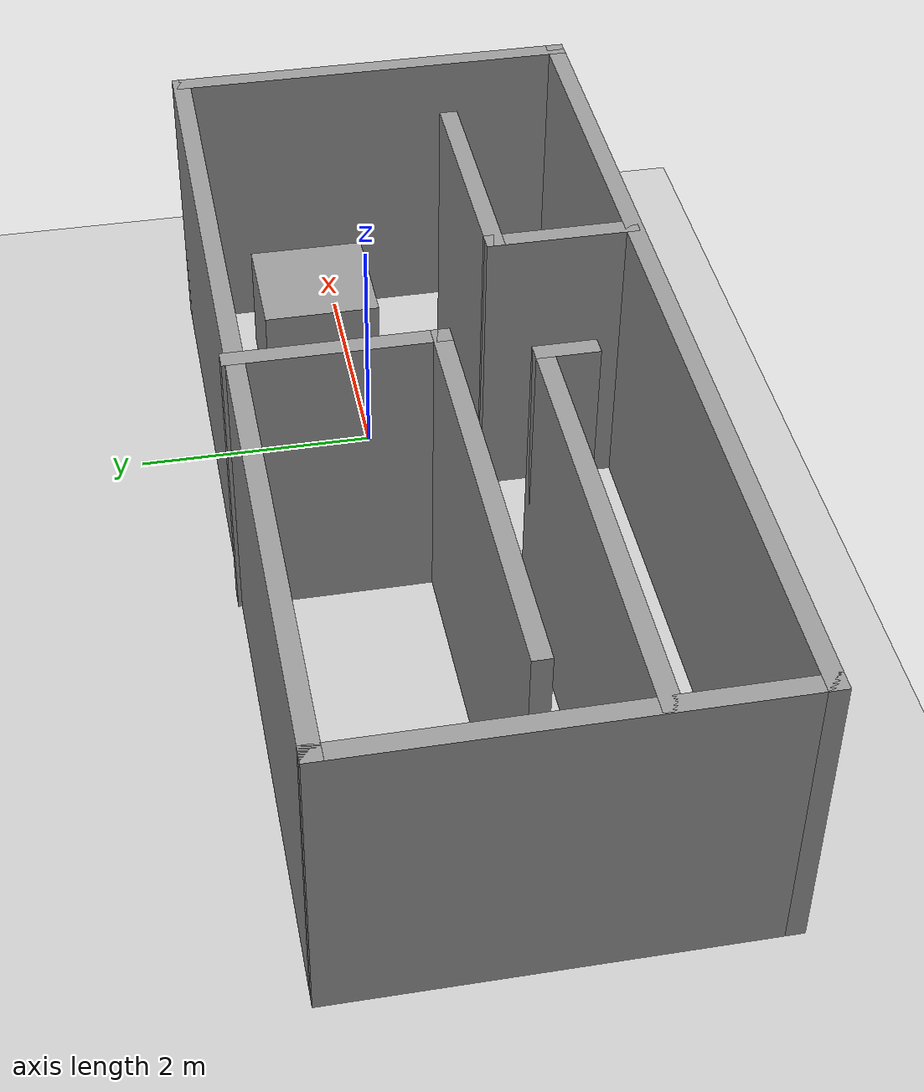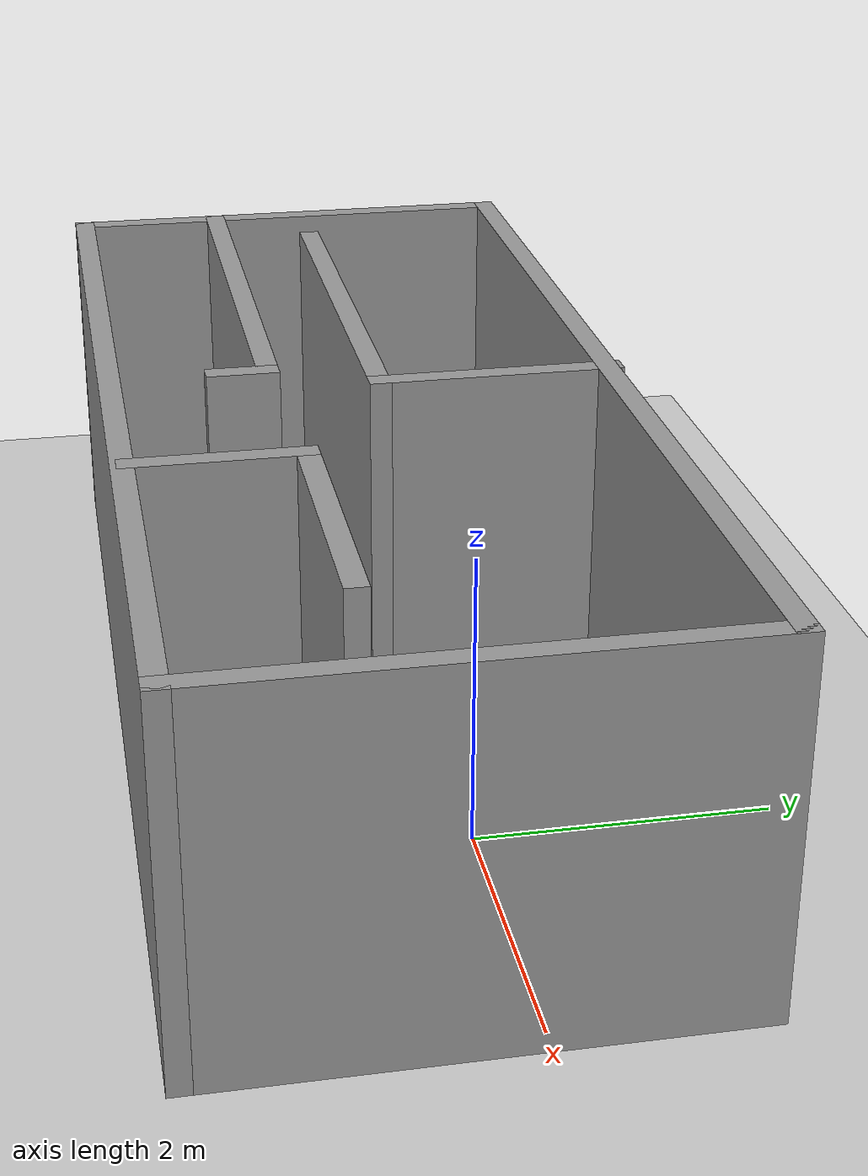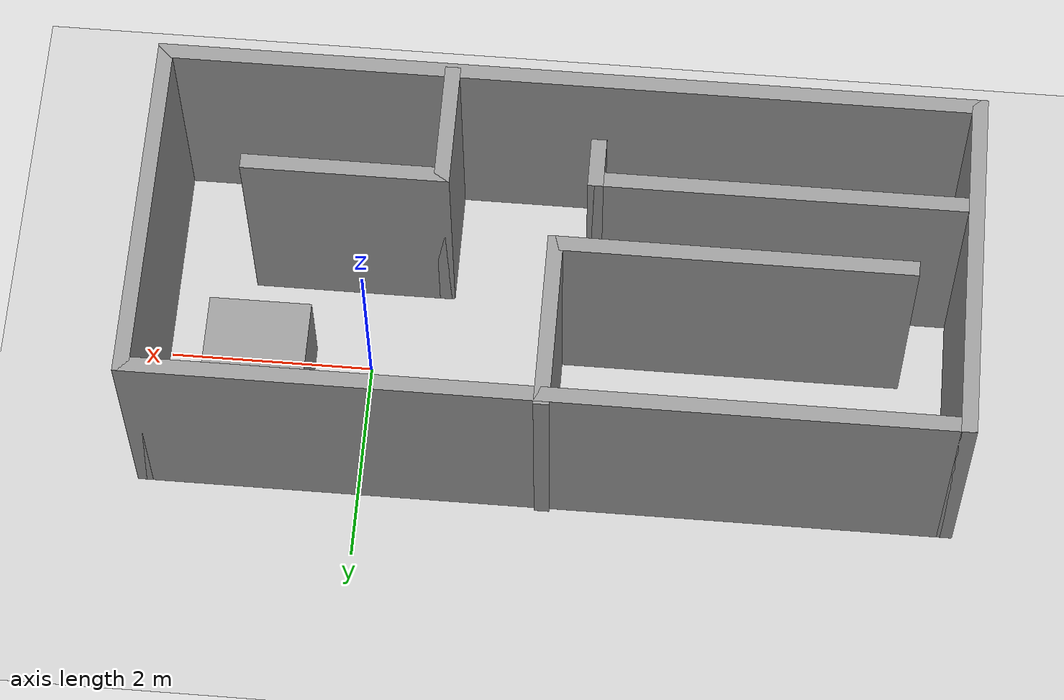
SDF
<sdf version="1.7">
 <world name="default">
  <light name="sun" type="directional">
   <pose>0 0 10 0 -0 0</pose>
   <diffuse>0.8 0.8 0.8 1</diffuse>
   <specular>0.2 0.2 0.2 1</specular>
   <attenuation>
    <range>1000</range>
    <constant>0.9</constant>
    <linear>0.01</linear>
    <quadratic>0.001</quadratic>
   </attenuation>
   <direction>-0.5 0.1 -0.9</direction>
   <spot><inner_angle>0</inner_angle><outer_angle>0</outer_angle><falloff>0</falloff></spot>
  </light>
  <model name="ground_plane">
   <static>1</static>
   <link name="link">
    <collision name="collision">
     <geometry><plane><normal>0 0 1</normal><size>100 100</size></plane></geometry>
     <surface><friction><ode><mu>100</mu><mu2>50</mu2></ode></friction></surface>
    </collision>
    <visual name="visual">
     <cast_shadows>0</cast_shadows>
     <geometry><plane><normal>0 0 1</normal><size>100 100</size></plane></geometry>
     <material>
      <script><uri>file://media/materials/scripts/gazebo.material</uri><name>Gazebo/Grey</name></script>
     </material>
    </visual>
   </link>
  </model>
  <gravity>0 0 -9.8</gravity>
  <magnetic_field>6e-06 2.3e-05 -4.2e-05</magnetic_field>
  <atmosphere type="adiabatic"/>
  <physics type="ode">
   <max_step_size>0.001</max_step_size>
   <real_time_factor>1</real_time_factor>
   <real_time_update_rate>1000</real_time_update_rate>
  </physics>
  <scene><ambient>0.4 0.4 0.4 1</ambient><background>0.7 0.7 0.7 1</background><shadows>1</shadows></scene>
  <audio><device>default</device></audio>
  <spherical_coordinates>
   <surface_model>EARTH_WGS84</surface_model>
   <latitude_deg>0</latitude_deg>
   <longitude_deg>0</longitude_deg>
   <elevation>0</elevation>
   <heading_deg>0</heading_deg>
  </spherical_coordinates>
  <model name="room">
   <pose>-1.82695 0.227211 0 0 -0 0</pose>
   <link name="Wall_0">
    <collision name="Wall_0_Collision">
     <geometry><box><size>8 0.15 2.5</size></box></geometry>
     <pose>0 0 1.25 0 -0 0</pose>
    </collision>
    <visual name="Wall_0_Visual">
     <pose>0 0 1.25 0 -0 0</pose>
     <geometry><box><size>8 0.15 2.5</size></box></geometry>
     <material>
      <script><uri>file://media/materials/scripts/gazebo.material</uri><name>Gazebo/Grey</name></script>
      <ambient>1 1 1 1</ambient>
     </material>
     <meta><layer>0</layer></meta>
    </visual>
    <pose>-0 1.0575 0 0 -0 0</pose>
   </link>
   <link name="Wall_1">
    <collision name="Wall_1_Collision">
     <geometry><box><size>3.5 0.15 2.5</size></box></geometry>
     <pose>0 0 1.25 0 -0 0</pose>
    </collision>
    <visual name="Wall_1_Visual">
     <pose>0 0 1.25 0 -0 0</pose>
     <geometry><box><size>3.5 0.15 2.5</size></box></geometry>
     <material>
      <script><uri>file://media/materials/scripts/gazebo.material</uri><name>Gazebo/Grey</name></script>
      <ambient>1 1 1 1</ambient>
     </material>
     <meta><layer>0</layer></meta>
    </visual>
    <pose>3.925 -0.6175 0 0 -0 -1.5708</pose>
   </link>
   <link name="Wall_10">
    <collision name="Wall_10_Collision">
     <geometry><box><size>3.75 0.15 2.5</size></box></geometry>
     <pose>0 0 1.25 0 -0 0</pose>
    </collision>
    <visual name="Wall_10_Visual">
     <pose>0 0 1.25 0 -0 0</pose>
     <geometry><box><size>3.75 0.15 2.5</size></box></geometry>
     <material>
      <script><uri>file://media/materials/scripts/gazebo.material</uri><name>Gazebo/Grey</name></script>
      <ambient>1 1 1 1</ambient>
     </material>
     <meta><layer>0</layer></meta>
    </visual>
    <pose>-2.115 -1.2225 0 0 -0 0</pose>
   </link>
   <link name="Wall_11">
    <collision name="Wall_11_Collision">
     <geometry><box><size>0.5 0.15 2.5</size></box></geometry>
     <pose>0 0 1.25 0 -0 0</pose>
    </collision>
    <visual name="Wall_11_Visual">
     <pose>0 0 1.25 0 -0 0</pose>
     <geometry><box><size>0.5 0.15 2.5</size></box></geometry>
     <material>
      <script><uri>file://media/materials/scripts/gazebo.material</uri><name>Gazebo/Grey</name></script>
      <ambient>1 1 1 1</ambient>
     </material>
     <meta><layer>0</layer></meta>
    </visual>
    <pose>-0.315 -1.3975 0 0 -0 -1.5708</pose>
   </link>
   <link name="Wall_13">
    <collision name="Wall_13_Collision">
     <geometry><box><size>1.25 0.15 2.5</size></box></geometry>
     <pose>0 0 1.25 0 -0 0</pose>
    </collision>
    <visual name="Wall_13_Visual">
     <pose>0 0 1.25 0 -0 0</pose>
     <geometry><box><size>1.25 0.15 2.5</size></box></geometry>
     <material>
      <script><uri>file://media/materials/scripts/gazebo.material</uri><name>Gazebo/Grey</name></script>
      <ambient>1 1 1 1</ambient>
     </material>
     <meta><layer>0</layer></meta>
    </visual>
    <pose>1.145 -1.7025 0 0 -0 1.5708</pose>
   </link>
   <link name="Wall_14">
    <collision name="Wall_14_Collision">
     <geometry><box><size>2 0.15 2.5</size></box></geometry>
     <pose>0 0 1.25 0 -0 0</pose>
    </collision>
    <visual name="Wall_14_Visual">
     <pose>0 0 1.25 0 -0 0</pose>
     <geometry><box><size>2 0.15 2.5</size></box></geometry>
     <material>
      <script><uri>file://media/materials/scripts/gazebo.material</uri><name>Gazebo/Grey</name></script>
      <ambient>1 1 1 1</ambient>
     </material>
     <meta><layer>0</layer></meta>
    </visual>
    <pose>2.07 -1.1525 0 0 -0 0</pose>
   </link>
   <link name="Wall_2">
    <collision name="Wall_2_Collision">
     <geometry><box><size>8 0.15 2.5</size></box></geometry>
     <pose>0 0 1.25 0 -0 0</pose>
    </collision>
    <visual name="Wall_2_Visual">
     <pose>0 0 1.25 0 -0 0</pose>
     <geometry><box><size>8 0.15 2.5</size></box></geometry>
     <material>
      <script><uri>file://media/materials/scripts/gazebo.material</uri><name>Gazebo/Grey</name></script>
      <ambient>1 1 1 1</ambient>
     </material>
     <meta><layer>0</layer></meta>
    </visual>
    <pose>-0 -2.2925 0 0 -0 3.14159</pose>
   </link>
   <link name="Wall_3">
    <collision name="Wall_3_Collision">
     <geometry><box><size>3.5 0.15 2.5</size></box></geometry>
     <pose>0 0 1.25 0 -0 0</pose>
    </collision>
    <visual name="Wall_3_Visual">
     <pose>0 0 1.25 0 -0 0</pose>
     <geometry><box><size>3.5 0.15 2.5</size></box></geometry>
     <material>
      <script><uri>file://media/materials/scripts/gazebo.material</uri><name>Gazebo/Grey</name></script>
      <ambient>1 1 1 1</ambient>
     </material>
     <meta><layer>0</layer></meta>
    </visual>
    <pose>-3.925 -0.6175 0 0 -0 1.5708</pose>
   </link>
   <link name="Wall_5">
    <collision name="Wall_5_Collision">
     <geometry><box><size>1.75 0.15 2.5</size></box></geometry>
     <pose>0 0 1.25 0 -0 0</pose>
    </collision>
    <visual name="Wall_5_Visual">
     <pose>0 0 1.25 0 -0 0</pose>
     <geometry><box><size>1.75 0.15 2.5</size></box></geometry>
     <material>
      <script><uri>file://media/materials/scripts/gazebo.material</uri><name>Gazebo/Grey</name></script>
      <ambient>1 1 1 1</ambient>
     </material>
     <meta><layer>0</layer></meta>
    </visual>
    <pose>0.015 0.2875 0 0 -0 -1.5708</pose>
   </link>
   <link name="Wall_8">
    <collision name="Wall_8_Collision">
     <geometry><box><size>3.5 0.15 2.5</size></box></geometry>
     <pose>0 0 1.25 0 -0 0</pose>
    </collision>
    <visual name="Wall_8_Visual">
     <pose>0 0 1.25 0 -0 0</pose>
     <geometry><box><size>3.5 0.15 2.5</size></box></geometry>
     <material>
      <script><uri>file://media/materials/scripts/gazebo.material</uri><name>Gazebo/Grey</name></script>
      <ambient>1 1 1 1</ambient>
     </material>
     <meta><layer>0</layer></meta>
    </visual>
    <pose>-1.66 -0.5125 0 0 -0 3.14159</pose>
   </link>
   <static>1</static>
  </model>
  <model name="unit_box">
   <pose>1.06704 0.309093 0.5 0 -0 0</pose>
   <link name="link">
    <inertial>
     <mass>1</mass>
     <inertia>
      <ixx>0.166667</ixx>
      <ixy>0</ixy>
      <ixz>0</ixz>
      <iyy>0.166667</iyy>
      <iyz>0</iyz>
      <izz>0.166667</izz>
     </inertia>
    </inertial>
    <collision name="collision"><geometry><box><size>1 1 1</size></box></geometry></collision>
    <visual name="visual">
     <geometry><box><size>1 1 1</size></box></geometry>
     <material>
      <script><name>Gazebo/Grey</name><uri>file://media/materials/scripts/gazebo.material</uri></script>
     </material>
    </visual>
   </link>
  </model>
 </world>
</sdf>
